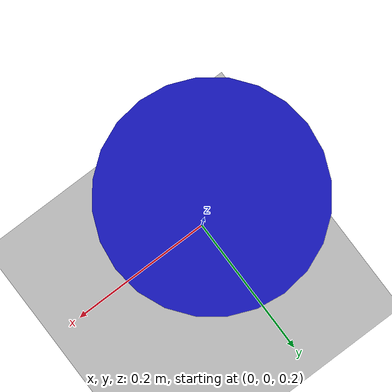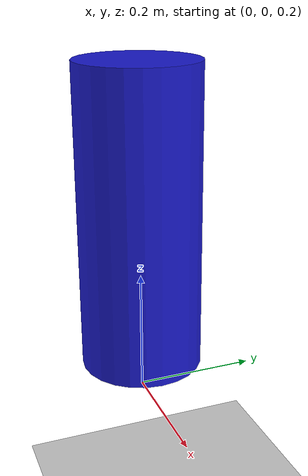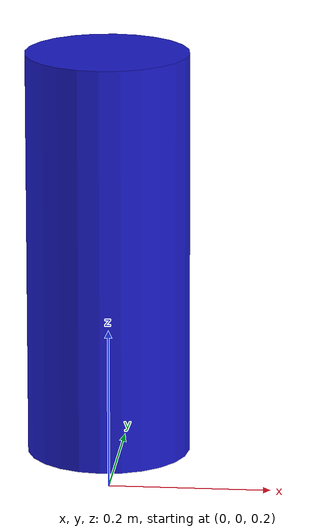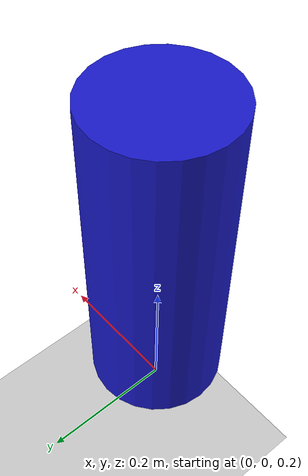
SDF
<?xml version="1.0" ?>
<sdf version="1.8">
  <world name="lidar_world">
    <plugin filename="gz-sim-physics-system" name="gz::sim::systems::Physics"/>
    <plugin filename="gz-sim-sensors-system" name="gz::sim::systems::Sensors">
      <render_engine>ogre2</render_engine>
    </plugin>
    <plugin filename="gz-sim-scene-broadcaster-system" name="gz::sim::systems::SceneBroadcaster"/>
    <plugin filename="gz-sim-user-commands-system" name="gz::sim::systems::UserCommands"/>

    <model name="ground_plane">
      <static>true</static>
      <link name="link">
        <collision name="collision"><geometry><plane><normal>0 0 1</normal></plane></geometry></collision>
        <visual name="visual">
          <geometry><plane><normal>0 0 1</normal><size>100 100</size></plane></geometry>
          <material><ambient>0.8 0.8 0.8 1</ambient></material>
        </visual>
      </link>
    </model>

    <model name="my_lidar">
      <static>true</static> <pose>0 0 0.5 0 0 0</pose>
      <link name="lidar_link">
        <sensor name="gpu_lidar" type="gpu_lidar">
          <pose>0 0 0 0 0 0</pose>
          <topic>/scan</topic>
          <update_rate>10</update_rate>
          <ray>
            <scan>
              <horizontal><samples>360</samples><resolution>1</resolution><min_angle>-3.14159</min_angle><max_angle>3.14159</max_angle></horizontal>
            </scan>
            <range><min>0.1</min><max>10.0</max></range>
          </ray>
          <always_on>1</always_on>
          <visualize>true</visualize> </sensor>
      </link>
      <link name="base">
        <visual name="base_visual">
          <geometry><cylinder><radius>0.1</radius><length>0.5</length></cylinder></geometry>
          <material><ambient>0.1 0.1 0.8 1</ambient></material>
        </visual>
      </link>
    </model>
  </world>
</sdf>
